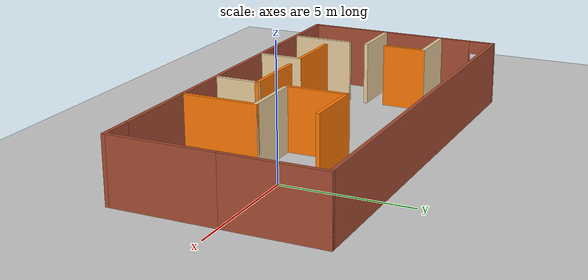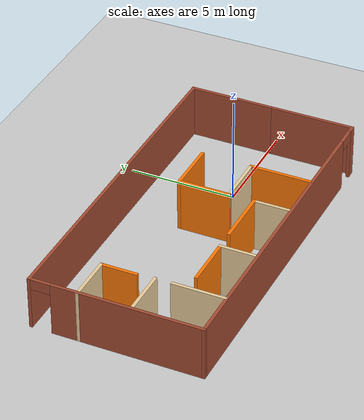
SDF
<sdf version="1.6">
 <world name="default">
  <light name="sun" type="directional">
   <pose>0 0 10 0 -0 0</pose>
   <diffuse>0.8 0.8 0.8 1</diffuse>
   <specular>0.2 0.2 0.2 1</specular>
   <attenuation>
    <range>1000</range>
    <constant>0.9</constant>
    <linear>0.01</linear>
    <quadratic>0.001</quadratic>
   </attenuation>
   <direction>-0.5 0.1 -0.9</direction>
  </light>
  <model name="ground_plane">
   <static>1</static>
   <link name="link">
    <collision name="collision">
     <geometry><plane><normal>0 0 1</normal><size>100 100</size></plane></geometry>
     <surface>
      <contact><collide_bitmask>65535</collide_bitmask></contact>
      <friction><ode><mu>100</mu><mu2>50</mu2></ode></friction>
     </surface>
    </collision>
    <visual name="visual">
     <cast_shadows>0</cast_shadows>
     <geometry><plane><normal>0 0 1</normal><size>100 100</size></plane></geometry>
     <material>
      <script><uri>file://media/materials/scripts/gazebo.material</uri><name>Gazebo/Grey</name></script>
     </material>
    </visual>
   </link>
  </model>
  <gravity>0 0 -9.8</gravity>
  <magnetic_field>6e-06 2.3e-05 -4.2e-05</magnetic_field>
  <atmosphere type="adiabatic"/>
  <physics name="default_physics" default="0" type="ode">
   <max_step_size>0.001</max_step_size>
   <real_time_factor>1</real_time_factor>
   <real_time_update_rate>1000</real_time_update_rate>
  </physics>
  <scene><ambient>0.4 0.4 0.4 1</ambient><background>0.7 0.7 0.7 1</background><shadows>1</shadows></scene>
  <audio><device>default</device></audio>
  <spherical_coordinates>
   <surface_model>EARTH_WGS84</surface_model>
   <latitude_deg>0</latitude_deg>
   <longitude_deg>0</longitude_deg>
   <elevation>0</elevation>
   <heading_deg>0</heading_deg>
  </spherical_coordinates>
  <model name="sudhir.building">
   <pose>-3.94751 -0.134043 -0 0 -0 3.14154</pose>
   <link name="Wall_0">
    <collision name="Wall_0_Collision">
     <geometry><box><size>4 0.15 2.5</size></box></geometry>
     <pose>0 0 1.25 0 -0 0</pose>
    </collision>
    <visual name="Wall_0_Visual">
     <pose>0 0 1.25 0 -0 0</pose>
     <geometry><box><size>4 0.15 2.5</size></box></geometry>
     <material>
      <script><uri>file://media/materials/scripts/gazebo.material</uri><name>Gazebo/Bricks</name></script>
      <ambient>1 1 1 1</ambient>
     </material>
     <meta><layer>0</layer></meta>
    </visual>
    <pose>-7.92943 1.85 0 0 -0 -1.5708</pose>
   </link>
   <link name="Wall_10">
    <collision name="Wall_10_Collision">
     <geometry><box><size>2.5 0.15 2.5</size></box></geometry>
     <pose>0 0 1.25 0 -0 0</pose>
    </collision>
    <visual name="Wall_10_Visual">
     <pose>0 0 1.25 0 -0 0</pose>
     <geometry><box><size>2.5 0.15 2.5</size></box></geometry>
     <material>
      <script><uri>file://media/materials/scripts/gazebo.material</uri><name>Gazebo/Grey</name></script>
      <ambient>0.996078 0.47451 0.0196078 1</ambient>
     </material>
     <meta><layer>0</layer></meta>
    </visual>
    <pose>-0.891787 -0.14494 0 0 -0 -1.5708</pose>
   </link>
   <link name="Wall_11">
    <collision name="Wall_11_Collision">
     <geometry><box><size>2.5 0.15 2.5</size></box></geometry>
     <pose>0 0 1.25 0 -0 0</pose>
    </collision>
    <visual name="Wall_11_Visual">
     <pose>0 0 1.25 0 -0 0</pose>
     <geometry><box><size>2.5 0.15 2.5</size></box></geometry>
     <material>
      <script><uri>file://media/materials/scripts/gazebo.material</uri><name>Gazebo/Grey</name></script>
      <ambient>0.996078 0.47451 0.0196078 1</ambient>
     </material>
     <meta><layer>0</layer></meta>
    </visual>
    <pose>-2.06679 -1.31994 0 0 -0 3.14159</pose>
   </link>
   <link name="Wall_13">
    <collision name="Wall_13_Collision">
     <geometry><box><size>1.75 0.15 2.5</size></box></geometry>
     <pose>0 0 1.25 0 -0 0</pose>
    </collision>
    <visual name="Wall_13_Visual">
     <pose>0 0 1.25 0 -0 0</pose>
     <geometry><box><size>1.75 0.15 2.5</size></box></geometry>
     <material>
      <script><uri>file://media/materials/scripts/gazebo.material</uri><name>Gazebo/Grey</name></script>
      <ambient>0.921569 0.807843 0.615686 1</ambient>
     </material>
     <meta><layer>0</layer></meta>
    </visual>
    <pose>-0.908613 2.9996 0 0 -0 -1.5708</pose>
   </link>
   <link name="Wall_14">
    <collision name="Wall_14_Collision">
     <geometry><box><size>2.75 0.15 2.5</size></box></geometry>
     <pose>0 0 1.25 0 -0 0</pose>
    </collision>
    <visual name="Wall_14_Visual">
     <pose>0 0 1.25 0 -0 0</pose>
     <geometry><box><size>2.75 0.15 2.5</size></box></geometry>
     <material>
      <script><uri>file://media/materials/scripts/gazebo.material</uri><name>Gazebo/Grey</name></script>
      <ambient>0.996078 0.47451 0.0196078 1</ambient>
     </material>
     <meta><layer>0</layer></meta>
    </visual>
    <pose>0.391387 2.19961 0 0 -0 0</pose>
   </link>
   <link name="Wall_17">
    <collision name="Wall_17_Collision">
     <geometry><box><size>1.75 0.15 2.5</size></box></geometry>
     <pose>0 0 1.25 0 -0 0</pose>
    </collision>
    <visual name="Wall_17_Visual">
     <pose>0 0 1.25 0 -0 0</pose>
     <geometry><box><size>1.75 0.15 2.5</size></box></geometry>
     <material>
      <script><uri>file://media/materials/scripts/gazebo.material</uri><name>Gazebo/Grey</name></script>
      <ambient>0.921569 0.807843 0.615686 1</ambient>
     </material>
     <meta><layer>0</layer></meta>
    </visual>
    <pose>2.63138 3.01972 0 0 -0 -1.5708</pose>
   </link>
   <link name="Wall_18">
    <collision name="Wall_18_Collision">
     <geometry><box><size>2.5 0.15 2.5</size></box></geometry>
     <pose>0 0 1.25 0 -0 0</pose>
    </collision>
    <visual name="Wall_18_Visual">
     <pose>0 0 1.25 0 -0 0</pose>
     <geometry><box><size>2.5 0.15 2.5</size></box></geometry>
     <material>
      <script><uri>file://media/materials/scripts/gazebo.material</uri><name>Gazebo/Grey</name></script>
      <ambient>0.996078 0.47451 0.0196078 1</ambient>
     </material>
     <meta><layer>0</layer></meta>
    </visual>
    <pose>3.80638 2.21972 0 0 -0 0</pose>
   </link>
   <link name="Wall_20">
    <collision name="Wall_20_Collision">
     <geometry><box><size>2.5 0.15 2.5</size></box></geometry>
     <pose>0 0 1.25 0 -0 0</pose>
    </collision>
    <visual name="Wall_20_Visual">
     <pose>0 0 1.25 0 -0 0</pose>
     <geometry><box><size>2.5 0.15 2.5</size></box></geometry>
     <material>
      <script><uri>file://media/materials/scripts/gazebo.material</uri><name>Gazebo/Grey</name></script>
      <ambient>0.921569 0.807843 0.615686 1</ambient>
     </material>
     <meta><layer>0</layer></meta>
    </visual>
    <pose>5.74898 2.68495 0 0 -0 -1.5708</pose>
   </link>
   <link name="Wall_22">
    <collision name="Wall_22_Collision">
     <geometry><box><size>2.25 0.15 2.5</size></box></geometry>
     <pose>0 0 1.25 0 -0 0</pose>
    </collision>
    <visual name="Wall_22_Visual">
     <pose>0 0 1.25 0 -0 0</pose>
     <geometry><box><size>2.25 0.15 2.5</size></box></geometry>
     <material>
      <script><uri>file://media/materials/scripts/gazebo.material</uri><name>Gazebo/Grey</name></script>
      <ambient>0.921569 0.807843 0.615686 1</ambient>
     </material>
     <meta><layer>0</layer></meta>
    </visual>
    <pose>6.81909 0.722229 0 0 -0 0</pose>
   </link>
   <link name="Wall_24">
    <collision name="Wall_24_Collision">
     <geometry><box><size>1.75 0.15 2.5</size></box></geometry>
     <pose>0 0 1.25 0 -0 0</pose>
    </collision>
    <visual name="Wall_24_Visual">
     <pose>0 0 1.25 0 -0 0</pose>
     <geometry><box><size>1.75 0.15 2.5</size></box></geometry>
     <material>
      <script><uri>file://media/materials/scripts/gazebo.material</uri><name>Gazebo/Grey</name></script>
      <ambient>0.996078 0.47451 0.0196078 1</ambient>
     </material>
     <meta><layer>0</layer></meta>
    </visual>
    <pose>5.82943 -0.902428 0 0 -0 -1.5708</pose>
   </link>
   <link name="Wall_25">
    <collision name="Wall_25_Collision">
     <geometry><box><size>2.25 0.15 2.5</size></box></geometry>
     <pose>0 0 1.25 0 -0 0</pose>
    </collision>
    <visual name="Wall_25_Visual">
     <pose>0 0 1.25 0 -0 0</pose>
     <geometry><box><size>2.25 0.15 2.5</size></box></geometry>
     <material>
      <script><uri>file://media/materials/scripts/gazebo.material</uri><name>Gazebo/Grey</name></script>
      <ambient>0.921569 0.807843 0.615686 1</ambient>
     </material>
     <meta><layer>0</layer></meta>
    </visual>
    <pose>6.87943 -1.70243 0 0 -0 0</pose>
   </link>
   <link name="Wall_3">
    <collision name="Wall_3_Collision">
     <geometry><box><size>4 0.15 2.5</size></box></geometry>
     <pose>0 0 1.25 0 -0 0</pose>
    </collision>
    <visual name="Wall_3_Visual">
     <pose>0 0 1.25 0 -0 0</pose>
     <geometry><box><size>4 0.15 2.5</size></box></geometry>
     <material>
      <script><uri>file://media/materials/scripts/gazebo.material</uri><name>Gazebo/Bricks</name></script>
      <ambient>1 1 1 1</ambient>
     </material>
     <meta><layer>0</layer></meta>
    </visual>
    <pose>-7.92943 -2 0 0 -0 -1.5708</pose>
   </link>
   <link name="Wall_4">
    <collision name="Wall_4_Collision">
     <geometry><box><size>16 0.15 2.5</size></box></geometry>
     <pose>0 0 1.25 0 -0 0</pose>
    </collision>
    <visual name="Wall_4_Visual">
     <pose>0 0 1.25 0 -0 0</pose>
     <geometry><box><size>16 0.15 2.5</size></box></geometry>
     <material>
      <script><uri>file://media/materials/scripts/gazebo.material</uri><name>Gazebo/Bricks</name></script>
      <ambient>1 1 1 1</ambient>
     </material>
     <meta><layer>0</layer></meta>
    </visual>
    <pose>-0.004434 -3.925 0 0 -0 0</pose>
   </link>
   <link name="Wall_5">
    <pose>7.92057 0 0 0 -0 1.5708</pose>
    <visual name="Wall_5_Visual_0">
     <pose>-3.92553 0 1.25 0 -0 0</pose>
     <geometry><box><size>0.148947 0.15 2.5</size></box></geometry>
     <material>
      <script><uri>file://media/materials/scripts/gazebo.material</uri><name>Gazebo/Bricks</name></script>
      <ambient>1 1 1 1</ambient>
     </material>
     <meta><layer>0</layer></meta>
    </visual>
    <collision name="Wall_5_Collision_0">
     <geometry><box><size>0.148947 0.15 2.5</size></box></geometry>
     <pose>-3.92553 0 1.25 0 -0 0</pose>
    </collision>
    <visual name="Wall_5_Visual_1">
     <pose>0.524473 0 1.25 0 -0 0</pose>
     <geometry><box><size>6.95105 0.15 2.5</size></box></geometry>
     <material>
      <script><uri>file://media/materials/scripts/gazebo.material</uri><name>Gazebo/Bricks</name></script>
      <ambient>1 1 1 1</ambient>
     </material>
     <meta><layer>0</layer></meta>
    </visual>
    <collision name="Wall_5_Collision_1">
     <geometry><box><size>6.95105 0.15 2.5</size></box></geometry>
     <pose>0.524473 0 1.25 0 -0 0</pose>
    </collision>
    <visual name="Wall_5_Visual_2">
     <pose>-3.40105 0 2.25 0 -0 0</pose>
     <geometry><box><size>0.9 0.15 0.5</size></box></geometry>
     <material>
      <script><uri>file://media/materials/scripts/gazebo.material</uri><name>Gazebo/Bricks</name></script>
      <ambient>1 1 1 1</ambient>
     </material>
     <meta><layer>0</layer></meta>
    </visual>
    <collision name="Wall_5_Collision_2">
     <geometry><box><size>0.9 0.15 0.5</size></box></geometry>
     <pose>-3.40105 0 2.25 0 -0 0</pose>
    </collision>
   </link>
   <link name="Wall_6">
    <pose>-0.004434 3.925 0 0 -0 3.14159</pose>
    <visual name="Wall_6_Visual_0">
     <pose>-0.655307 0 1.25 0 -0 0</pose>
     <geometry><box><size>14.6894 0.15 2.5</size></box></geometry>
     <material>
      <script><uri>file://media/materials/scripts/gazebo.material</uri><name>Gazebo/Bricks</name></script>
      <ambient>1 1 1 1</ambient>
     </material>
     <meta><layer>0</layer></meta>
    </visual>
    <collision name="Wall_6_Collision_0">
     <geometry><box><size>14.6894 0.15 2.5</size></box></geometry>
     <pose>-0.655307 0 1.25 0 -0 0</pose>
    </collision>
    <visual name="Wall_6_Visual_1">
     <pose>7.79469 0 1.25 0 -0 0</pose>
     <geometry><box><size>0.410614 0.15 2.5</size></box></geometry>
     <material>
      <script><uri>file://media/materials/scripts/gazebo.material</uri><name>Gazebo/Bricks</name></script>
      <ambient>1 1 1 1</ambient>
     </material>
     <meta><layer>0</layer></meta>
    </visual>
    <collision name="Wall_6_Collision_1">
     <geometry><box><size>0.410614 0.15 2.5</size></box></geometry>
     <pose>7.79469 0 1.25 0 -0 0</pose>
    </collision>
    <visual name="Wall_6_Visual_2">
     <pose>7.13939 0 2.25 0 -0 0</pose>
     <geometry><box><size>0.9 0.15 0.5</size></box></geometry>
     <material>
      <script><uri>file://media/materials/scripts/gazebo.material</uri><name>Gazebo/Bricks</name></script>
      <ambient>1 1 1 1</ambient>
     </material>
     <meta><layer>0</layer></meta>
    </visual>
    <collision name="Wall_6_Collision_2">
     <geometry><box><size>0.9 0.15 0.5</size></box></geometry>
     <pose>7.13939 0 2.25 0 -0 0</pose>
    </collision>
   </link>
   <link name="Wall_8">
    <collision name="Wall_8_Collision">
     <geometry><box><size>3 0.15 2.5</size></box></geometry>
     <pose>0 0 1.25 0 -0 0</pose>
    </collision>
    <visual name="Wall_8_Visual">
     <pose>0 0 1.25 0 -0 0</pose>
     <geometry><box><size>3 0.15 2.5</size></box></geometry>
     <material>
      <script><uri>file://media/materials/scripts/gazebo.material</uri><name>Gazebo/Grey</name></script>
      <ambient>0.996078 0.47451 0.0196078 1</ambient>
     </material>
     <meta><layer>0</layer></meta>
    </visual>
    <pose>-3.24179 2.45506 0 0 -0 -1.5708</pose>
   </link>
   <link name="Wall_9">
    <collision name="Wall_9_Collision">
     <geometry><box><size>2.5 0.15 2.5</size></box></geometry>
     <pose>0 0 1.25 0 -0 0</pose>
    </collision>
    <visual name="Wall_9_Visual">
     <pose>0 0 1.25 0 -0 0</pose>
     <geometry><box><size>2.5 0.15 2.5</size></box></geometry>
     <material>
      <script><uri>file://media/materials/scripts/gazebo.material</uri><name>Gazebo/Grey</name></script>
      <ambient>0.921569 0.807843 0.615686 1</ambient>
     </material>
     <meta><layer>0</layer></meta>
    </visual>
    <pose>-2.06679 1.03006 0 0 -0 0</pose>
   </link>
   <static>1</static>
  </model>
 </world>
</sdf>
